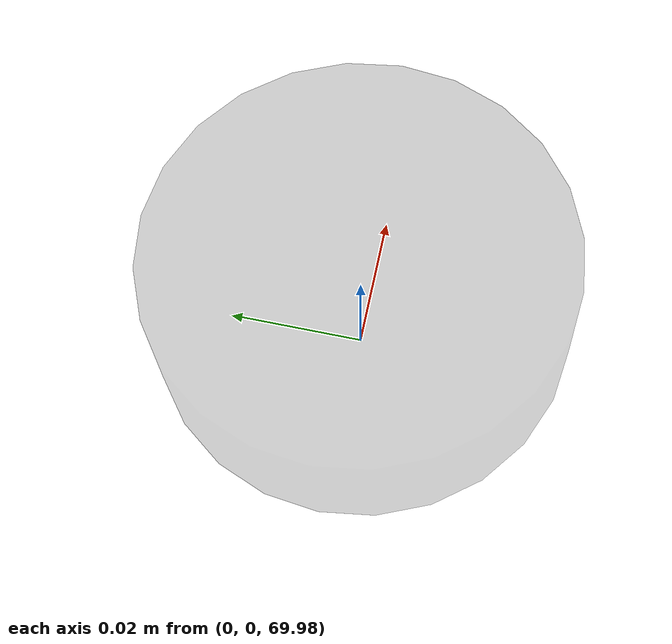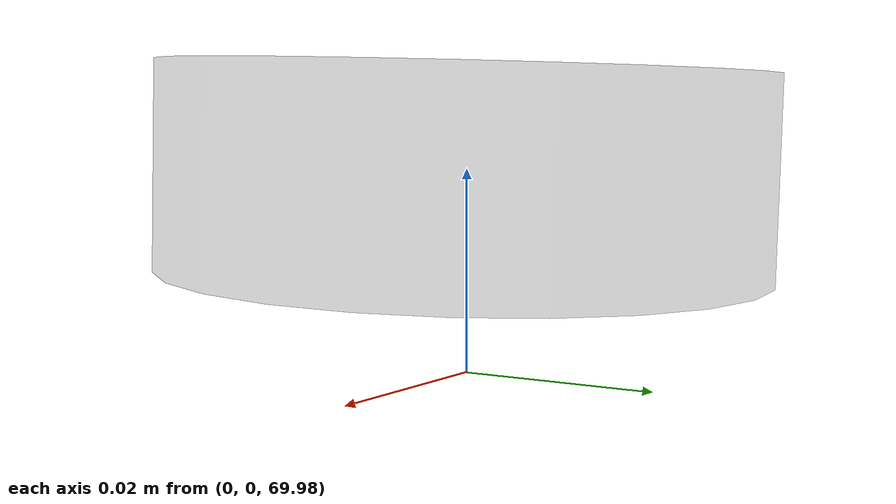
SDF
<?xml version="1.0" ?>
<sdf version="1.4">
	<model name="top_camera">
		<static>true</static>

		<link name="body">
			<pose>0 0 70 0 1.5708 1.5708</pose>

			<gravity>false</gravity>

			<inertial>
				<mass>0.02</mass>
			</inertial>

			<visual name="visual">
				<pose>0 0 0 0 1.6 0</pose>
				<geometry>
					<cylinder>
						<length>0.02</length>
						<radius>0.03</radius>
					</cylinder>
				</geometry>
				<cast_shadows>false</cast_shadows>
				<material>
					<ambient>0.0 0.0 0.0 0.1</ambient>
					<diffuse>0.0 0.0 0.0 0.11</diffuse>
				</material>
			</visual>

			<sensor type="camera" name="top_camera">
				<update_rate>30.0</update_rate>
				<camera name="top_camera">
					<horizontal_fov>0.11</horizontal_fov>
					<image>
						<width>1200</width>
						<height>700</height>
						<format>R8G8B8</format>
					</image>
					<clip>
						<near>0.02</near>
						<far>300</far>
					</clip>
				</camera>
				<plugin name="camera_controller" filename="libgazebo_ros_camera.so">
					<alwaysOn>true</alwaysOn>
					<updateRate>0.0</updateRate>
					<cameraName>gazebo/camera/top_camera</cameraName>
					<imageTopicName>image_raw</imageTopicName>
					<cameraInfoTopicName>camera_info</cameraInfoTopicName>
					<frameName>top_camera_link</frameName>
					<hackBaseline>0.07</hackBaseline>
					<distortionK1>0.0</distortionK1>
					<distortionK2>0.0</distortionK2>
					<distortionK3>0.0</distortionK3>
					<distortionT1>0.0</distortionT1>
					<distortionT2>0.0</distortionT2>
				</plugin>
			</sensor>
		</link>
	</model>
</sdf>
